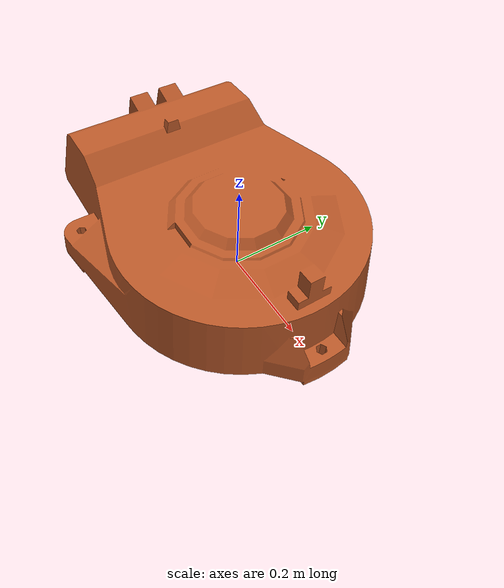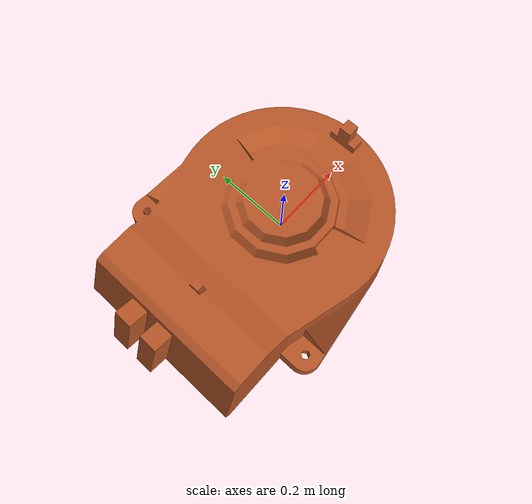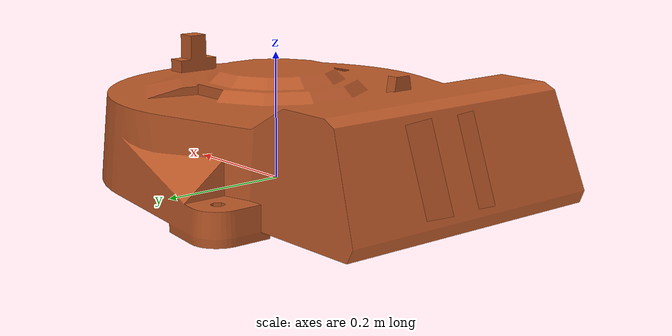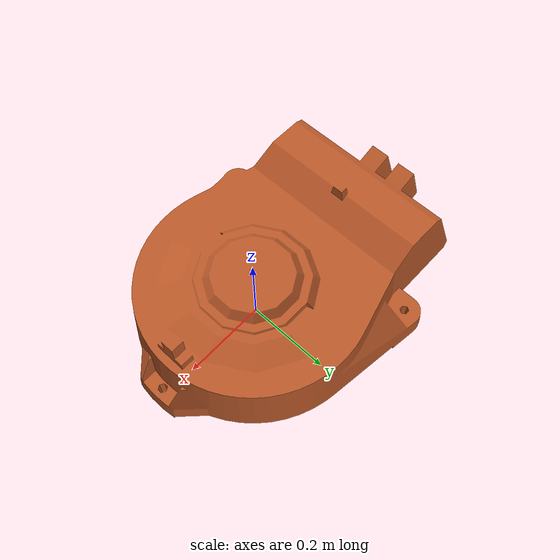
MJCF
<mujoco model="base_link">
  <default>
    <default class="visual">
      <geom group="2" type="mesh" contype="0" conaffinity="0"/>
    </default>
    <default class="collision">
      <geom group="3" type="mesh"/>
    </default>
  </default>
  <asset>
    <material name="colour_abb_orange.003" specular="0.5" shininess="0.25" rgba="0.737255 0.349020 0.160784 1.000000"/>
    <mesh file="base_link.obj"/>
  </asset>
  <worldbody>
    <body name="base_link">
      <geom material="colour_abb_orange.003" mesh="base_link" class="visual"/>
      <geom mesh="base_link" class="collision"/>
    </body>
  </worldbody>
</mujoco>
